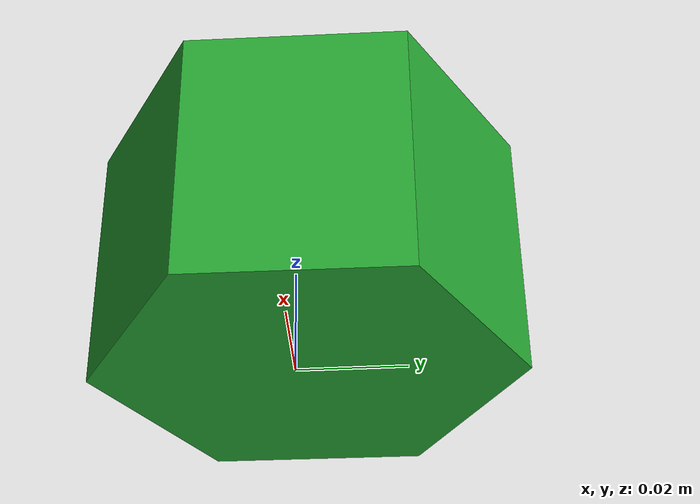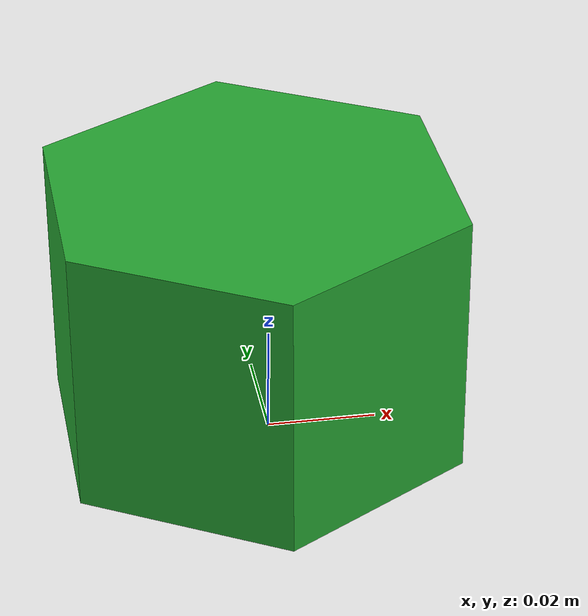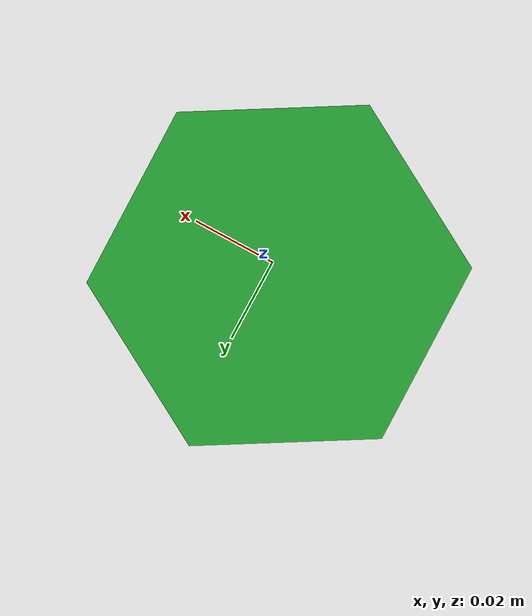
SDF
<?xml version="1.0" ?>
<sdf version="1.5">
  <model name="my3rdmodel">
    <static>false</static>
    <link name="link">
      <collision name="collision">
        <geometry>
            <mesh>
                <uri>model://my3rdmodel/meshes/shape3.dae</uri>
                <scale>0.002 0.002 0.001</scale>
            </mesh>
        </geometry>
        <surface>
          <friction>
            <ode>
              <mu>100</mu>
              <mu2>50</mu2>
            </ode>
          </friction>
        </surface>
      </collision>
      <visual name="visual">
        <geometry>
            <mesh>
                <uri>model://my3rdmodel/meshes/shape3.dae</uri>
                <scale>0.002 0.002 0.001</scale>
            </mesh>
        </geometry>
        <material>
          <script>
            <uri>file://media/materials/scripts/gazebo.material</uri>
            <name>Gazebo/Green</name>
          </script>
        </material>
      </visual>
    </link>
  </model>
</sdf>
